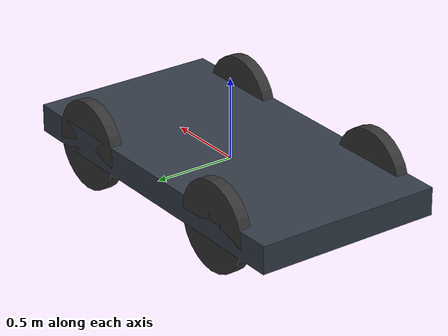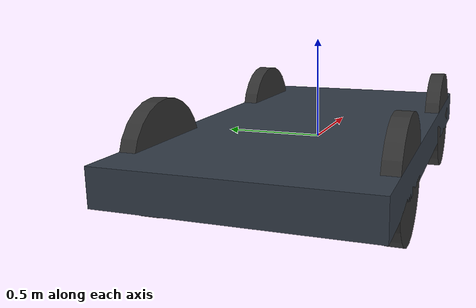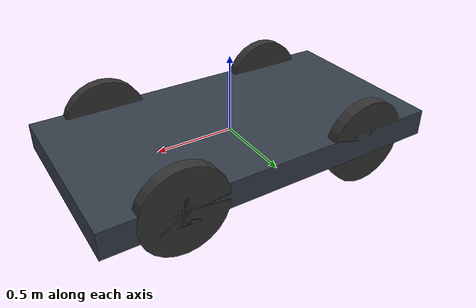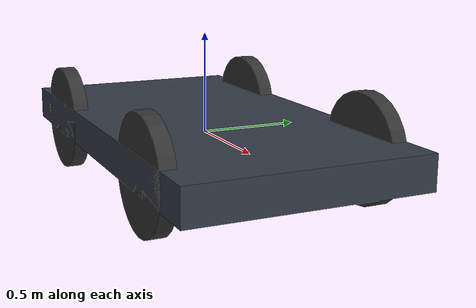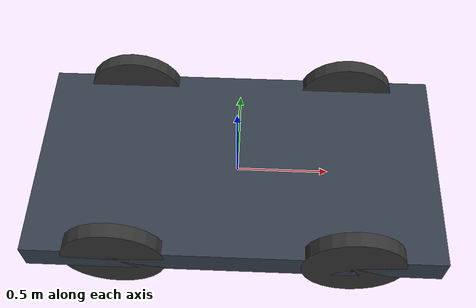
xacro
<?xml version="1.0" encoding="UTF-8"?>
<robot name="vehicle" xmlns:xacro="http://www.ros.org/wiki/xacro">

<xacro:include filename="$(find vehicle_2_description)/urdf/gazebo.xacro"/>
<xacro:include filename="$(find vehicle_2_description)/urdf/wheel.xacro"/>

<!-- Dummy -->
<link name="dummy_link"/>

<!-- Chassis -->
<link name="base_link">
  <inertial>
    <origin xyz="0 0 0" rpy="0 0 0"/>
    <mass value="130"/>
    <inertia ixx="15" ixy="0" ixz="0" iyy="52" iyz="0" izz="66"/>
  </inertial>
  <visual>
    <origin xyz="0 0 0" rpy="0 0 0"/>
    <geometry>
      <box size="2.186 1.162 0.17"/>
    </geometry>
    <material name="blue"/>
  </visual>
  <collision>
    <origin xyz="0 0 0" rpy="0 0 0"/>
    <geometry>
      <box size="2.186 1.162 0.17"/>
    </geometry>
  </collision>
</link>

<gazebo reference="base_link">
  <kp value="1000000"/>
  <kd value="1"/>
  <mu1 value="10"/>
  <mu2 value="10"/>
  <visual>
    <material>
      <xacro:gmaterial color="blue"/>
    </material>
  </visual>
</gazebo>

<joint name="dummy_joint" type="fixed">
  <parent link="dummy_link"/>
  <child link="base_link"/>
</joint>

<!-- Front Left Wheel -->
<xacro:wheel linkname="front_left" xposition="0.621" yposition="0.543" count="1"/>

<!-- Front Right Wheel -->
<xacro:wheel linkname="front_right" xposition="0.621" yposition="-0.543" count="2"/>

<!-- Rear Left Wheel -->
<xacro:wheel linkname="rear_left" xposition="-0.621" yposition="0.543" count="3"/>

<!-- Rear Right Wheel -->
<xacro:wheel linkname="rear_right" xposition="-0.621" yposition="-0.543" count="4"/>

</robot>

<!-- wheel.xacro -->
<robot xmlns:xacro="http://www.ros.org/wiki/xacro">

<xacro:include filename="$(find vehicle_2_description)/urdf/material.xacro"/>

<!-- linkname     xposition  yposition  count -->
<!-- front_left       0.621      0.543      1 -->
<!-- front_right      0.621     -0.543      2 -->
<!-- rear_left       -0.621      0.543      3 -->
<!-- rear_right      -0.621     -0.543      4 -->
<xacro:macro name="wheel" params="linkname xposition yposition count">

<link name="${linkname}_wheel_link">
  <inertial>
    <origin xyz="0 0 0" rpy="0 0 0"/>
    <mass value="10"/>
    <inertia ixx="0.2" ixy="0" ixz="0" iyy="0.35" iyz="0" izz="0.2"/>
  </inertial>
  <visual>
    <origin xyz="0 0 0" rpy="${pi/2} 0 0"/>
    <geometry>
      <cylinder radius="0.272" length="0.076"/>
    </geometry>
    <material name="grey"/>
  </visual>
  <collision>
    <origin xyz="0 0 0" rpy="${pi/2} 0 0"/>
    <geometry>
      <cylinder radius="0.272" length="0.076"/>
    </geometry>
  </collision>
</link>

<gazebo reference="${linkname}_wheel_link">
  <kp value="1000000"/>
  <kd value="1"/>
  <mu1 value="10"/>
  <mu2 value="10"/>
  <visual>
    <material>
      <xacro:gmaterial color="grey"/>
    </material>
  </visual>
</gazebo>

<joint name="${linkname}_wheel_joint" type="continuous">
  <parent link="base_link"/>
  <child link="${linkname}_wheel_link"/>
  <origin xyz="${xposition} ${yposition} 0" rpy="0 0 0"/>
  <axis xyz="0 1 0"/>
</joint>

<transmission name="tran${count}">
  <type>transmission_interface/SimpleTransmission</type>
  <joint name="${linkname}_wheel_joint">
    <hardwareInterface>hardware_interface/EffortJointInterface</hardwareInterface>
  </joint>
  <actuator name="motor${count}">
    <hardwareInterface>hardware_interface/EffortJointInterface</hardwareInterface>
    <mechanicalReduction>1</mechanicalReduction>
  </actuator>
</transmission>

</xacro:macro>
</robot>

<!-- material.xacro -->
<robot>

<material name="black">
  <color rgba="0.0 0.0 0.0 1.0"/>
</material>
<material name="blue">
  <color rgba="0.203125 0.23828125 0.28515625 1.0"/>
</material>
<material name="green">
  <color rgba="0.0 0.8 0.0 1.0"/>
</material>
<material name="grey">
  <color rgba="0.2 0.2 0.2 1.0"/>
</material>
<material name="orange">
  <color rgba="1.0 0.423529411765 0.0392156862745 1.0"/>
</material>
<material name="brown">
  <color rgba="0.870588235294 0.811764705882 0.764705882353 1.0"/>
</material>
<material name="red">
  <color rgba="0.80078125 0.12890625 0.1328125 1.0"/>
</material>
<material name="white">
  <color rgba="1.0 1.0 1.0 1.0"/>
</material>

</robot>
